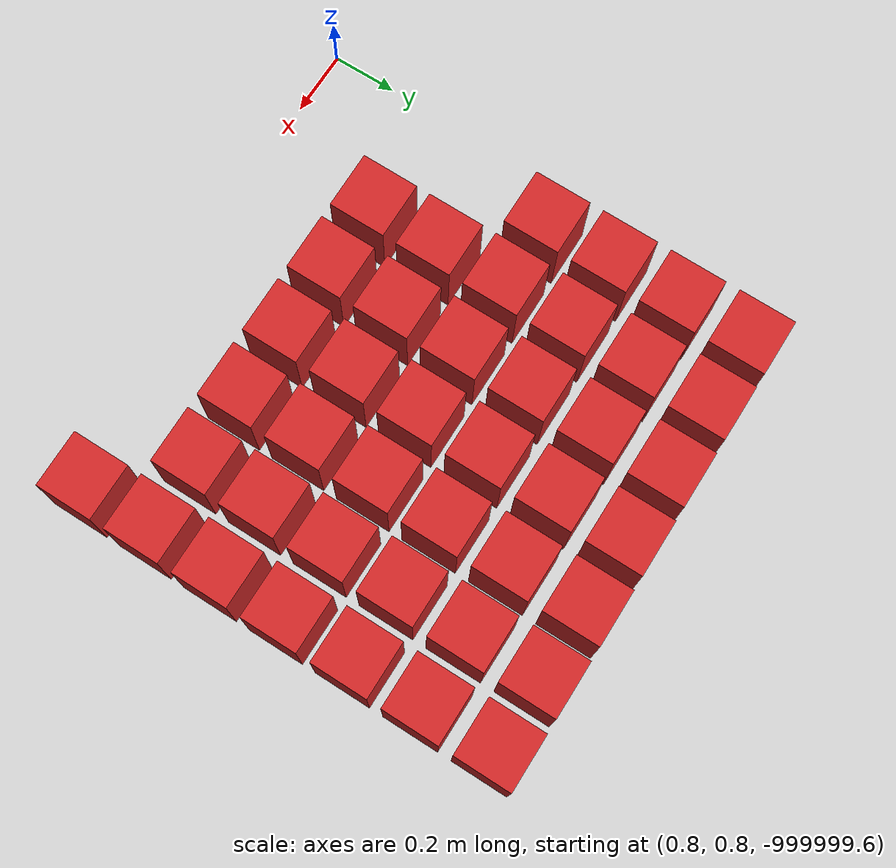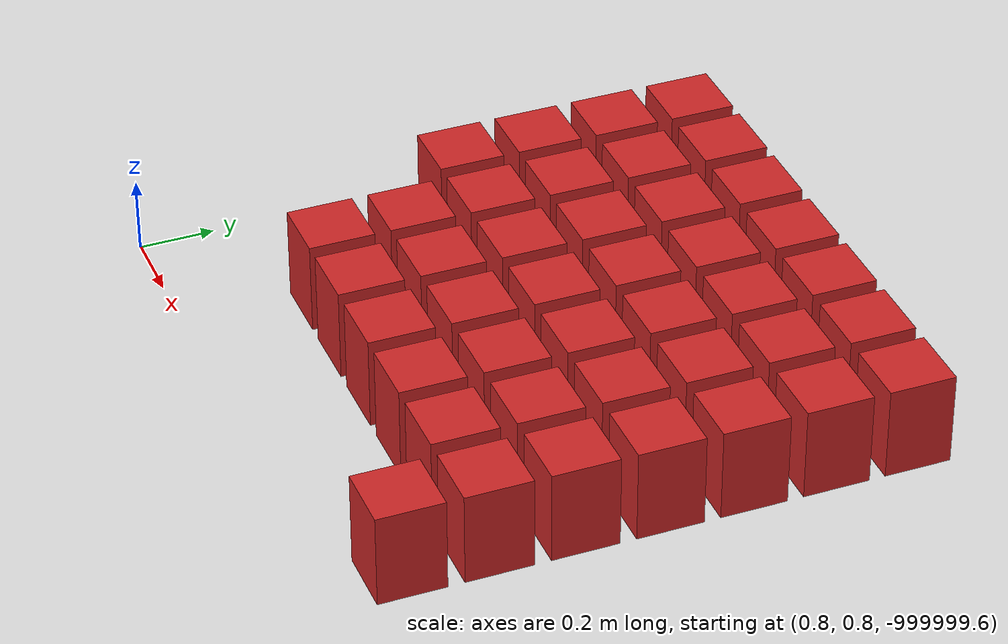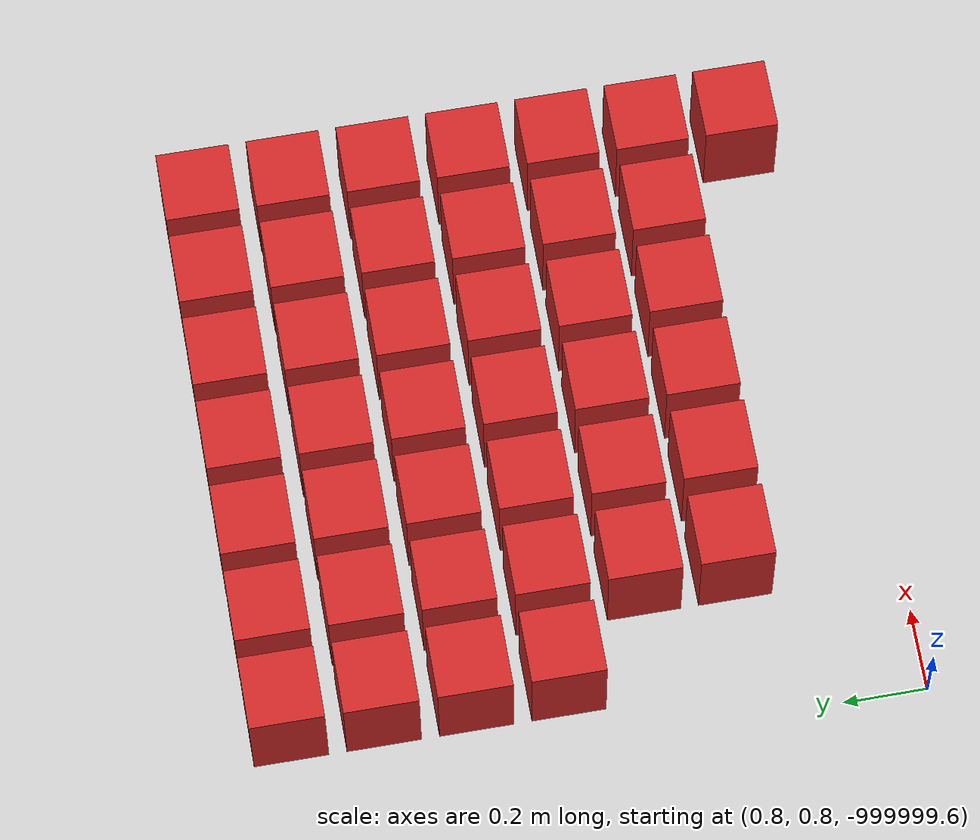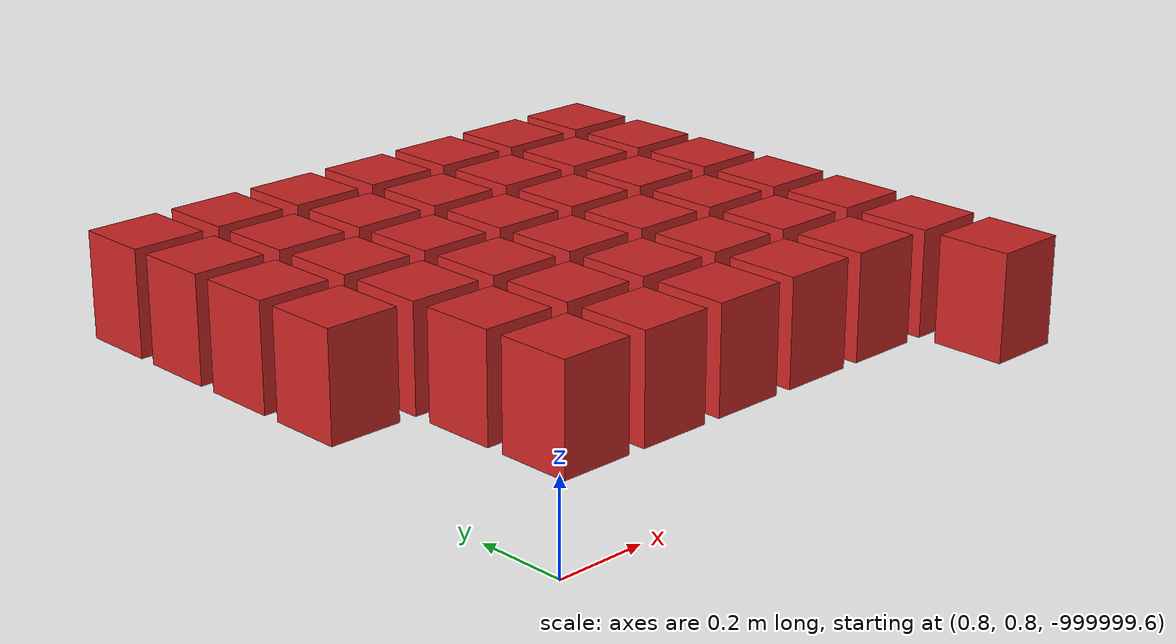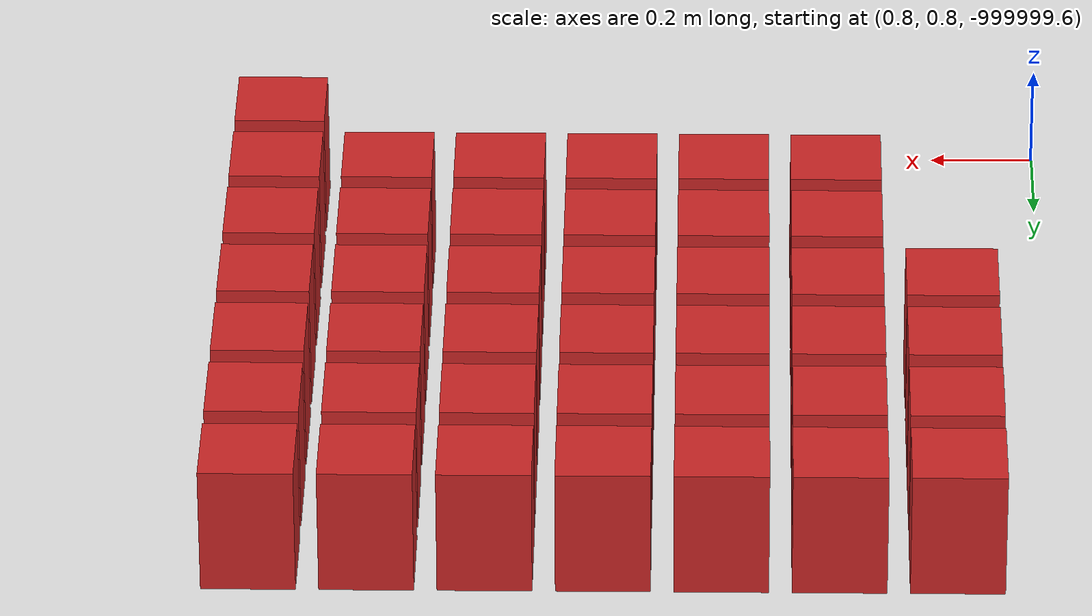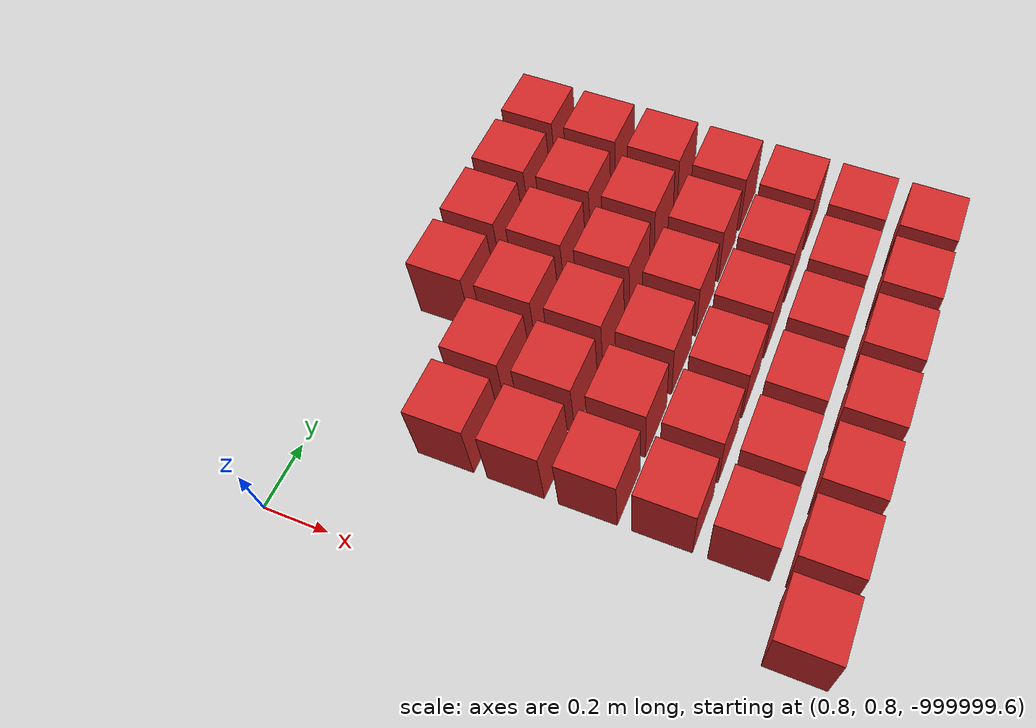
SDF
<sdf version="1.7">
 <world name="default">
  <model name="ground_plane">
   <static>1</static>
   <link name="link">
    <collision name="collision">
     <geometry><plane><normal>0 0 1</normal><size>100 100</size></plane></geometry>
     <surface>
      <contact><collide_bitmask>65535</collide_bitmask></contact>
      <friction><ode><mu>100</mu><mu2>50</mu2></ode></friction>
     </surface>
    </collision>
    <visual name="visual">
     <cast_shadows>0</cast_shadows>
     <geometry><plane><normal>0 0 1</normal><size>100 100</size></plane></geometry>
     <material>
      <script><uri>file://media/materials/scripts/gazebo.material</uri><name>Gazebo/Grey</name></script>
     </material>
    </visual>
   </link>
  </model>
  <model name="wall_390">
   <link name="link">
    <pose>0 0 0.5 0 -0 0</pose>
    <inertial>
     <mass>0.5167</mass>
     <inertia>
      <ixx>0.000861167</ixx>
      <ixy>0</ixy>
      <ixz>0</ixz>
      <iyy>0.000861167</iyy>
      <iyz>0</iyz>
      <izz>0.000861167</izz>
     </inertia>
    </inertial>
    <collision name="collision">
     <geometry><box><size>0.21 0.21 0.25</size></box></geometry>
     <surface>
      <contact>
       <poissons_ratio>0.347</poissons_ratio>
       <elastic_modulus>8.8e+09</elastic_modulus>
       <ode><kp>100000</kp><kd>100</kd><max_vel>100</max_vel><min_depth>0.001</min_depth></ode>
      </contact>
      <friction>
       <torsional>
        <coefficient>1</coefficient>
        <use_patch_radius>0</use_patch_radius>
        <surface_radius>0.01</surface_radius>
       </torsional>
      </friction>
     </surface>
    </collision>
    <visual name="visual">
     <geometry><box><size>0.175 0.175 0.25</size></box></geometry>
     <material>
      <script><uri>file://media/materials/scripts/gazebo.material</uri><name>Gazebo/Red</name></script>
     </material>
    </visual>
   </link>
   <pose>2.28261 0.978261 -1e+06 0 -0 0</pose>
  </model>
  <model name="wall_408">
   <link name="link">
    <pose>0 0 0.5 0 -0 0</pose>
    <inertial>
     <mass>0.5167</mass>
     <inertia>
      <ixx>0.000861167</ixx>
      <ixy>0</ixy>
      <ixz>0</ixz>
      <iyy>0.000861167</iyy>
      <iyz>0</iyz>
      <izz>0.000861167</izz>
     </inertia>
    </inertial>
    <collision name="collision">
     <geometry><box><size>0.21 0.21 0.25</size></box></geometry>
     <surface>
      <contact>
       <poissons_ratio>0.347</poissons_ratio>
       <elastic_modulus>8.8e+09</elastic_modulus>
       <ode><kp>100000</kp><kd>100</kd><max_vel>100</max_vel><min_depth>0.001</min_depth></ode>
      </contact>
      <friction>
       <torsional>
        <coefficient>1</coefficient>
        <use_patch_radius>0</use_patch_radius>
        <surface_radius>0.01</surface_radius>
       </torsional>
      </friction>
     </surface>
    </collision>
    <visual name="visual">
     <geometry><box><size>0.175 0.175 0.25</size></box></geometry>
     <material>
      <script><uri>file://media/materials/scripts/gazebo.material</uri><name>Gazebo/Red</name></script>
     </material>
    </visual>
   </link>
   <pose>1.19565 1.19565 -1e+06 0 -0 0</pose>
  </model>
  <model name="wall_409">
   <link name="link">
    <pose>0 0 0.5 0 -0 0</pose>
    <inertial>
     <mass>0.5167</mass>
     <inertia>
      <ixx>0.000861167</ixx>
      <ixy>0</ixy>
      <ixz>0</ixz>
      <iyy>0.000861167</iyy>
      <iyz>0</iyz>
      <izz>0.000861167</izz>
     </inertia>
    </inertial>
    <collision name="collision">
     <geometry><box><size>0.21 0.21 0.25</size></box></geometry>
     <surface>
      <contact>
       <poissons_ratio>0.347</poissons_ratio>
       <elastic_modulus>8.8e+09</elastic_modulus>
       <ode><kp>100000</kp><kd>100</kd><max_vel>100</max_vel><min_depth>0.001</min_depth></ode>
      </contact>
      <friction>
       <torsional>
        <coefficient>1</coefficient>
        <use_patch_radius>0</use_patch_radius>
        <surface_radius>0.01</surface_radius>
       </torsional>
      </friction>
     </surface>
    </collision>
    <visual name="visual">
     <geometry><box><size>0.175 0.175 0.25</size></box></geometry>
     <material>
      <script><uri>file://media/materials/scripts/gazebo.material</uri><name>Gazebo/Red</name></script>
     </material>
    </visual>
   </link>
   <pose>1.41304 1.19565 -1e+06 0 -0 0</pose>
  </model>
  <model name="wall_410">
   <link name="link">
    <pose>0 0 0.5 0 -0 0</pose>
    <inertial>
     <mass>0.5167</mass>
     <inertia>
      <ixx>0.000861167</ixx>
      <ixy>0</ixy>
      <ixz>0</ixz>
      <iyy>0.000861167</iyy>
      <iyz>0</iyz>
      <izz>0.000861167</izz>
     </inertia>
    </inertial>
    <collision name="collision">
     <geometry><box><size>0.21 0.21 0.25</size></box></geometry>
     <surface>
      <contact>
       <poissons_ratio>0.347</poissons_ratio>
       <elastic_modulus>8.8e+09</elastic_modulus>
       <ode><kp>100000</kp><kd>100</kd><max_vel>100</max_vel><min_depth>0.001</min_depth></ode>
      </contact>
      <friction>
       <torsional>
        <coefficient>1</coefficient>
        <use_patch_radius>0</use_patch_radius>
        <surface_radius>0.01</surface_radius>
       </torsional>
      </friction>
     </surface>
    </collision>
    <visual name="visual">
     <geometry><box><size>0.175 0.175 0.25</size></box></geometry>
     <material>
      <script><uri>file://media/materials/scripts/gazebo.material</uri><name>Gazebo/Red</name></script>
     </material>
    </visual>
   </link>
   <pose>1.63043 1.19565 -1e+06 0 -0 0</pose>
  </model>
  <model name="wall_411">
   <link name="link">
    <pose>0 0 0.5 0 -0 0</pose>
    <inertial>
     <mass>0.5167</mass>
     <inertia>
      <ixx>0.000861167</ixx>
      <ixy>0</ixy>
      <ixz>0</ixz>
      <iyy>0.000861167</iyy>
      <iyz>0</iyz>
      <izz>0.000861167</izz>
     </inertia>
    </inertial>
    <collision name="collision">
     <geometry><box><size>0.21 0.21 0.25</size></box></geometry>
     <surface>
      <contact>
       <poissons_ratio>0.347</poissons_ratio>
       <elastic_modulus>8.8e+09</elastic_modulus>
       <ode><kp>100000</kp><kd>100</kd><max_vel>100</max_vel><min_depth>0.001</min_depth></ode>
      </contact>
      <friction>
       <torsional>
        <coefficient>1</coefficient>
        <use_patch_radius>0</use_patch_radius>
        <surface_radius>0.01</surface_radius>
       </torsional>
      </friction>
     </surface>
    </collision>
    <visual name="visual">
     <geometry><box><size>0.175 0.175 0.25</size></box></geometry>
     <material>
      <script><uri>file://media/materials/scripts/gazebo.material</uri><name>Gazebo/Red</name></script>
     </material>
    </visual>
   </link>
   <pose>1.84783 1.19565 -1e+06 0 -0 0</pose>
  </model>
  <model name="wall_412">
   <link name="link">
    <pose>0 0 0.5 0 -0 0</pose>
    <inertial>
     <mass>0.5167</mass>
     <inertia>
      <ixx>0.000861167</ixx>
      <ixy>0</ixy>
      <ixz>0</ixz>
      <iyy>0.000861167</iyy>
      <iyz>0</iyz>
      <izz>0.000861167</izz>
     </inertia>
    </inertial>
    <collision name="collision">
     <geometry><box><size>0.21 0.21 0.25</size></box></geometry>
     <surface>
      <contact>
       <poissons_ratio>0.347</poissons_ratio>
       <elastic_modulus>8.8e+09</elastic_modulus>
       <ode><kp>100000</kp><kd>100</kd><max_vel>100</max_vel><min_depth>0.001</min_depth></ode>
      </contact>
      <friction>
       <torsional>
        <coefficient>1</coefficient>
        <use_patch_radius>0</use_patch_radius>
        <surface_radius>0.01</surface_radius>
       </torsional>
      </friction>
     </surface>
    </collision>
    <visual name="visual">
     <geometry><box><size>0.175 0.175 0.25</size></box></geometry>
     <material>
      <script><uri>file://media/materials/scripts/gazebo.material</uri><name>Gazebo/Red</name></script>
     </material>
    </visual>
   </link>
   <pose>2.06522 1.19565 -1e+06 0 -0 0</pose>
  </model>
  <model name="wall_413">
   <link name="link">
    <pose>0 0 0.5 0 -0 0</pose>
    <inertial>
     <mass>0.5167</mass>
     <inertia>
      <ixx>0.000861167</ixx>
      <ixy>0</ixy>
      <ixz>0</ixz>
      <iyy>0.000861167</iyy>
      <iyz>0</iyz>
      <izz>0.000861167</izz>
     </inertia>
    </inertial>
    <collision name="collision">
     <geometry><box><size>0.21 0.21 0.25</size></box></geometry>
     <surface>
      <contact>
       <poissons_ratio>0.347</poissons_ratio>
       <elastic_modulus>8.8e+09</elastic_modulus>
       <ode><kp>100000</kp><kd>100</kd><max_vel>100</max_vel><min_depth>0.001</min_depth></ode>
      </contact>
      <friction>
       <torsional>
        <coefficient>1</coefficient>
        <use_patch_radius>0</use_patch_radius>
        <surface_radius>0.01</surface_radius>
       </torsional>
      </friction>
     </surface>
    </collision>
    <visual name="visual">
     <geometry><box><size>0.175 0.175 0.25</size></box></geometry>
     <material>
      <script><uri>file://media/materials/scripts/gazebo.material</uri><name>Gazebo/Red</name></script>
     </material>
    </visual>
   </link>
   <pose>2.28261 1.19565 -1e+06 0 -0 0</pose>
  </model>
  <model name="wall_431">
   <link name="link">
    <pose>0 0 0.5 0 -0 0</pose>
    <inertial>
     <mass>0.5167</mass>
     <inertia>
      <ixx>0.000861167</ixx>
      <ixy>0</ixy>
      <ixz>0</ixz>
      <iyy>0.000861167</iyy>
      <iyz>0</iyz>
      <izz>0.000861167</izz>
     </inertia>
    </inertial>
    <collision name="collision">
     <geometry><box><size>0.21 0.21 0.25</size></box></geometry>
     <surface>
      <contact>
       <poissons_ratio>0.347</poissons_ratio>
       <elastic_modulus>8.8e+09</elastic_modulus>
       <ode><kp>100000</kp><kd>100</kd><max_vel>100</max_vel><min_depth>0.001</min_depth></ode>
      </contact>
      <friction>
       <torsional>
        <coefficient>1</coefficient>
        <use_patch_radius>0</use_patch_radius>
        <surface_radius>0.01</surface_radius>
       </torsional>
      </friction>
     </surface>
    </collision>
    <visual name="visual">
     <geometry><box><size>0.175 0.175 0.25</size></box></geometry>
     <material>
      <script><uri>file://media/materials/scripts/gazebo.material</uri><name>Gazebo/Red</name></script>
     </material>
    </visual>
   </link>
   <pose>1.19565 1.41304 -1e+06 0 -0 0</pose>
  </model>
  <model name="wall_432">
   <link name="link">
    <pose>0 0 0.5 0 -0 0</pose>
    <inertial>
     <mass>0.5167</mass>
     <inertia>
      <ixx>0.000861167</ixx>
      <ixy>0</ixy>
      <ixz>0</ixz>
      <iyy>0.000861167</iyy>
      <iyz>0</iyz>
      <izz>0.000861167</izz>
     </inertia>
    </inertial>
    <collision name="collision">
     <geometry><box><size>0.21 0.21 0.25</size></box></geometry>
     <surface>
      <contact>
       <poissons_ratio>0.347</poissons_ratio>
       <elastic_modulus>8.8e+09</elastic_modulus>
       <ode><kp>100000</kp><kd>100</kd><max_vel>100</max_vel><min_depth>0.001</min_depth></ode>
      </contact>
      <friction>
       <torsional>
        <coefficient>1</coefficient>
        <use_patch_radius>0</use_patch_radius>
        <surface_radius>0.01</surface_radius>
       </torsional>
      </friction>
     </surface>
    </collision>
    <visual name="visual">
     <geometry><box><size>0.175 0.175 0.25</size></box></geometry>
     <material>
      <script><uri>file://media/materials/scripts/gazebo.material</uri><name>Gazebo/Red</name></script>
     </material>
    </visual>
   </link>
   <pose>1.41304 1.41304 -1e+06 0 -0 0</pose>
  </model>
  <model name="wall_433">
   <link name="link">
    <pose>0 0 0.5 0 -0 0</pose>
    <inertial>
     <mass>0.5167</mass>
     <inertia>
      <ixx>0.000861167</ixx>
      <ixy>0</ixy>
      <ixz>0</ixz>
      <iyy>0.000861167</iyy>
      <iyz>0</iyz>
      <izz>0.000861167</izz>
     </inertia>
    </inertial>
    <collision name="collision">
     <geometry><box><size>0.21 0.21 0.25</size></box></geometry>
     <surface>
      <contact>
       <poissons_ratio>0.347</poissons_ratio>
       <elastic_modulus>8.8e+09</elastic_modulus>
       <ode><kp>100000</kp><kd>100</kd><max_vel>100</max_vel><min_depth>0.001</min_depth></ode>
      </contact>
      <friction>
       <torsional>
        <coefficient>1</coefficient>
        <use_patch_radius>0</use_patch_radius>
        <surface_radius>0.01</surface_radius>
       </torsional>
      </friction>
     </surface>
    </collision>
    <visual name="visual">
     <geometry><box><size>0.175 0.175 0.25</size></box></geometry>
     <material>
      <script><uri>file://media/materials/scripts/gazebo.material</uri><name>Gazebo/Red</name></script>
     </material>
    </visual>
   </link>
   <pose>1.63043 1.41304 -1e+06 0 -0 0</pose>
  </model>
  <model name="wall_434">
   <link name="link">
    <pose>0 0 0.5 0 -0 0</pose>
    <inertial>
     <mass>0.5167</mass>
     <inertia>
      <ixx>0.000861167</ixx>
      <ixy>0</ixy>
      <ixz>0</ixz>
      <iyy>0.000861167</iyy>
      <iyz>0</iyz>
      <izz>0.000861167</izz>
     </inertia>
    </inertial>
    <collision name="collision">
     <geometry><box><size>0.21 0.21 0.25</size></box></geometry>
     <surface>
      <contact>
       <poissons_ratio>0.347</poissons_ratio>
       <elastic_modulus>8.8e+09</elastic_modulus>
       <ode><kp>100000</kp><kd>100</kd><max_vel>100</max_vel><min_depth>0.001</min_depth></ode>
      </contact>
      <friction>
       <torsional>
        <coefficient>1</coefficient>
        <use_patch_radius>0</use_patch_radius>
        <surface_radius>0.01</surface_radius>
       </torsional>
      </friction>
     </surface>
    </collision>
    <visual name="visual">
     <geometry><box><size>0.175 0.175 0.25</size></box></geometry>
     <material>
      <script><uri>file://media/materials/scripts/gazebo.material</uri><name>Gazebo/Red</name></script>
     </material>
    </visual>
   </link>
   <pose>1.84783 1.41304 -1e+06 0 -0 0</pose>
  </model>
  <model name="wall_435">
   <link name="link">
    <pose>0 0 0.5 0 -0 0</pose>
    <inertial>
     <mass>0.5167</mass>
     <inertia>
      <ixx>0.000861167</ixx>
      <ixy>0</ixy>
      <ixz>0</ixz>
      <iyy>0.000861167</iyy>
      <iyz>0</iyz>
      <izz>0.000861167</izz>
     </inertia>
    </inertial>
    <collision name="collision">
     <geometry><box><size>0.21 0.21 0.25</size></box></geometry>
     <surface>
      <contact>
       <poissons_ratio>0.347</poissons_ratio>
       <elastic_modulus>8.8e+09</elastic_modulus>
       <ode><kp>100000</kp><kd>100</kd><max_vel>100</max_vel><min_depth>0.001</min_depth></ode>
      </contact>
      <friction>
       <torsional>
        <coefficient>1</coefficient>
        <use_patch_radius>0</use_patch_radius>
        <surface_radius>0.01</surface_radius>
       </torsional>
      </friction>
     </surface>
    </collision>
    <visual name="visual">
     <geometry><box><size>0.175 0.175 0.25</size></box></geometry>
     <material>
      <script><uri>file://media/materials/scripts/gazebo.material</uri><name>Gazebo/Red</name></script>
     </material>
    </visual>
   </link>
   <pose>2.06522 1.41304 -1e+06 0 -0 0</pose>
  </model>
  <model name="wall_436">
   <link name="link">
    <pose>0 0 0.5 0 -0 0</pose>
    <inertial>
     <mass>0.5167</mass>
     <inertia>
      <ixx>0.000861167</ixx>
      <ixy>0</ixy>
      <ixz>0</ixz>
      <iyy>0.000861167</iyy>
      <iyz>0</iyz>
      <izz>0.000861167</izz>
     </inertia>
    </inertial>
    <collision name="collision">
     <geometry><box><size>0.21 0.21 0.25</size></box></geometry>
     <surface>
      <contact>
       <poissons_ratio>0.347</poissons_ratio>
       <elastic_modulus>8.8e+09</elastic_modulus>
       <ode><kp>100000</kp><kd>100</kd><max_vel>100</max_vel><min_depth>0.001</min_depth></ode>
      </contact>
      <friction>
       <torsional>
        <coefficient>1</coefficient>
        <use_patch_radius>0</use_patch_radius>
        <surface_radius>0.01</surface_radius>
       </torsional>
      </friction>
     </surface>
    </collision>
    <visual name="visual">
     <geometry><box><size>0.175 0.175 0.25</size></box></geometry>
     <material>
      <script><uri>file://media/materials/scripts/gazebo.material</uri><name>Gazebo/Red</name></script>
     </material>
    </visual>
   </link>
   <pose>2.28261 1.41304 -1e+06 0 -0 0</pose>
  </model>
  <model name="wall_453">
   <link name="link">
    <pose>0 0 0.5 0 -0 0</pose>
    <inertial>
     <mass>0.5167</mass>
     <inertia>
      <ixx>0.000861167</ixx>
      <ixy>0</ixy>
      <ixz>0</ixz>
      <iyy>0.000861167</iyy>
      <iyz>0</iyz>
      <izz>0.000861167</izz>
     </inertia>
    </inertial>
    <collision name="collision">
     <geometry><box><size>0.21 0.21 0.25</size></box></geometry>
     <surface>
      <contact>
       <poissons_ratio>0.347</poissons_ratio>
       <elastic_modulus>8.8e+09</elastic_modulus>
       <ode><kp>100000</kp><kd>100</kd><max_vel>100</max_vel><min_depth>0.001</min_depth></ode>
      </contact>
      <friction>
       <torsional>
        <coefficient>1</coefficient>
        <use_patch_radius>0</use_patch_radius>
        <surface_radius>0.01</surface_radius>
       </torsional>
      </friction>
     </surface>
    </collision>
    <visual name="visual">
     <geometry><box><size>0.175 0.175 0.25</size></box></geometry>
     <material>
      <script><uri>file://media/materials/scripts/gazebo.material</uri><name>Gazebo/Red</name></script>
     </material>
    </visual>
   </link>
   <pose>0.978261 1.63043 -1e+06 0 -0 0</pose>
  </model>
  <model name="wall_454">
   <link name="link">
    <pose>0 0 0.5 0 -0 0</pose>
    <inertial>
     <mass>0.5167</mass>
     <inertia>
      <ixx>0.000861167</ixx>
      <ixy>0</ixy>
      <ixz>0</ixz>
      <iyy>0.000861167</iyy>
      <iyz>0</iyz>
      <izz>0.000861167</izz>
     </inertia>
    </inertial>
    <collision name="collision">
     <geometry><box><size>0.21 0.21 0.25</size></box></geometry>
     <surface>
      <contact>
       <poissons_ratio>0.347</poissons_ratio>
       <elastic_modulus>8.8e+09</elastic_modulus>
       <ode><kp>100000</kp><kd>100</kd><max_vel>100</max_vel><min_depth>0.001</min_depth></ode>
      </contact>
      <friction>
       <torsional>
        <coefficient>1</coefficient>
        <use_patch_radius>0</use_patch_radius>
        <surface_radius>0.01</surface_radius>
       </torsional>
      </friction>
     </surface>
    </collision>
    <visual name="visual">
     <geometry><box><size>0.175 0.175 0.25</size></box></geometry>
     <material>
      <script><uri>file://media/materials/scripts/gazebo.material</uri><name>Gazebo/Red</name></script>
     </material>
    </visual>
   </link>
   <pose>1.19565 1.63043 -1e+06 0 -0 0</pose>
  </model>
  <model name="wall_455">
   <link name="link">
    <pose>0 0 0.5 0 -0 0</pose>
    <inertial>
     <mass>0.5167</mass>
     <inertia>
      <ixx>0.000861167</ixx>
      <ixy>0</ixy>
      <ixz>0</ixz>
      <iyy>0.000861167</iyy>
      <iyz>0</iyz>
      <izz>0.000861167</izz>
     </inertia>
    </inertial>
    <collision name="collision">
     <geometry><box><size>0.21 0.21 0.25</size></box></geometry>
     <surface>
      <contact>
       <poissons_ratio>0.347</poissons_ratio>
       <elastic_modulus>8.8e+09</elastic_modulus>
       <ode><kp>100000</kp><kd>100</kd><max_vel>100</max_vel><min_depth>0.001</min_depth></ode>
      </contact>
      <friction>
       <torsional>
        <coefficient>1</coefficient>
        <use_patch_radius>0</use_patch_radius>
        <surface_radius>0.01</surface_radius>
       </torsional>
      </friction>
     </surface>
    </collision>
    <visual name="visual">
     <geometry><box><size>0.175 0.175 0.25</size></box></geometry>
     <material>
      <script><uri>file://media/materials/scripts/gazebo.material</uri><name>Gazebo/Red</name></script>
     </material>
    </visual>
   </link>
   <pose>1.41304 1.63043 -1e+06 0 -0 0</pose>
  </model>
  <model name="wall_456">
   <link name="link">
    <pose>0 0 0.5 0 -0 0</pose>
    <inertial>
     <mass>0.5167</mass>
     <inertia>
      <ixx>0.000861167</ixx>
      <ixy>0</ixy>
      <ixz>0</ixz>
      <iyy>0.000861167</iyy>
      <iyz>0</iyz>
      <izz>0.000861167</izz>
     </inertia>
    </inertial>
    <collision name="collision">
     <geometry><box><size>0.21 0.21 0.25</size></box></geometry>
     <surface>
      <contact>
       <poissons_ratio>0.347</poissons_ratio>
       <elastic_modulus>8.8e+09</elastic_modulus>
       <ode><kp>100000</kp><kd>100</kd><max_vel>100</max_vel><min_depth>0.001</min_depth></ode>
      </contact>
      <friction>
       <torsional>
        <coefficient>1</coefficient>
        <use_patch_radius>0</use_patch_radius>
        <surface_radius>0.01</surface_radius>
       </torsional>
      </friction>
     </surface>
    </collision>
    <visual name="visual">
     <geometry><box><size>0.175 0.175 0.25</size></box></geometry>
     <material>
      <script><uri>file://media/materials/scripts/gazebo.material</uri><name>Gazebo/Red</name></script>
     </material>
    </visual>
   </link>
   <pose>1.63043 1.63043 -1e+06 0 -0 0</pose>
  </model>
  <model name="wall_457">
   <link name="link">
    <pose>0 0 0.5 0 -0 0</pose>
    <inertial>
     <mass>0.5167</mass>
     <inertia>
      <ixx>0.000861167</ixx>
      <ixy>0</ixy>
      <ixz>0</ixz>
      <iyy>0.000861167</iyy>
      <iyz>0</iyz>
      <izz>0.000861167</izz>
     </inertia>
    </inertial>
    <collision name="collision">
     <geometry><box><size>0.21 0.21 0.25</size></box></geometry>
     <surface>
      <contact>
       <poissons_ratio>0.347</poissons_ratio>
       <elastic_modulus>8.8e+09</elastic_modulus>
       <ode><kp>100000</kp><kd>100</kd><max_vel>100</max_vel><min_depth>0.001</min_depth></ode>
      </contact>
      <friction>
       <torsional>
        <coefficient>1</coefficient>
        <use_patch_radius>0</use_patch_radius>
        <surface_radius>0.01</surface_radius>
       </torsional>
      </friction>
     </surface>
    </collision>
    <visual name="visual">
     <geometry><box><size>0.175 0.175 0.25</size></box></geometry>
     <material>
      <script><uri>file://media/materials/scripts/gazebo.material</uri><name>Gazebo/Red</name></script>
     </material>
    </visual>
   </link>
   <pose>1.84783 1.63043 -1e+06 0 -0 0</pose>
  </model>
  <model name="wall_458">
   <link name="link">
    <pose>0 0 0.5 0 -0 0</pose>
    <inertial>
     <mass>0.5167</mass>
     <inertia>
      <ixx>0.000861167</ixx>
      <ixy>0</ixy>
      <ixz>0</ixz>
      <iyy>0.000861167</iyy>
      <iyz>0</iyz>
      <izz>0.000861167</izz>
     </inertia>
    </inertial>
    <collision name="collision">
     <geometry><box><size>0.21 0.21 0.25</size></box></geometry>
     <surface>
      <contact>
       <poissons_ratio>0.347</poissons_ratio>
       <elastic_modulus>8.8e+09</elastic_modulus>
       <ode><kp>100000</kp><kd>100</kd><max_vel>100</max_vel><min_depth>0.001</min_depth></ode>
      </contact>
      <friction>
       <torsional>
        <coefficient>1</coefficient>
        <use_patch_radius>0</use_patch_radius>
        <surface_radius>0.01</surface_radius>
       </torsional>
      </friction>
     </surface>
    </collision>
    <visual name="visual">
     <geometry><box><size>0.175 0.175 0.25</size></box></geometry>
     <material>
      <script><uri>file://media/materials/scripts/gazebo.material</uri><name>Gazebo/Red</name></script>
     </material>
    </visual>
   </link>
   <pose>2.06522 1.63043 -1e+06 0 -0 0</pose>
  </model>
  <model name="wall_459">
   <link name="link">
    <pose>0 0 0.5 0 -0 0</pose>
    <inertial>
     <mass>0.5167</mass>
     <inertia>
      <ixx>0.000861167</ixx>
      <ixy>0</ixy>
      <ixz>0</ixz>
      <iyy>0.000861167</iyy>
      <iyz>0</iyz>
      <izz>0.000861167</izz>
     </inertia>
    </inertial>
    <collision name="collision">
     <geometry><box><size>0.21 0.21 0.25</size></box></geometry>
     <surface>
      <contact>
       <poissons_ratio>0.347</poissons_ratio>
       <elastic_modulus>8.8e+09</elastic_modulus>
       <ode><kp>100000</kp><kd>100</kd><max_vel>100</max_vel><min_depth>0.001</min_depth></ode>
      </contact>
      <friction>
       <torsional>
        <coefficient>1</coefficient>
        <use_patch_radius>0</use_patch_radius>
        <surface_radius>0.01</surface_radius>
       </torsional>
      </friction>
     </surface>
    </collision>
    <visual name="visual">
     <geometry><box><size>0.175 0.175 0.25</size></box></geometry>
     <material>
      <script><uri>file://media/materials/scripts/gazebo.material</uri><name>Gazebo/Red</name></script>
     </material>
    </visual>
   </link>
   <pose>2.28261 1.63043 -1e+06 0 -0 0</pose>
  </model>
  <model name="wall_476">
   <link name="link">
    <pose>0 0 0.5 0 -0 0</pose>
    <inertial>
     <mass>0.5167</mass>
     <inertia>
      <ixx>0.000861167</ixx>
      <ixy>0</ixy>
      <ixz>0</ixz>
      <iyy>0.000861167</iyy>
      <iyz>0</iyz>
      <izz>0.000861167</izz>
     </inertia>
    </inertial>
    <collision name="collision">
     <geometry><box><size>0.21 0.21 0.25</size></box></geometry>
     <surface>
      <contact>
       <poissons_ratio>0.347</poissons_ratio>
       <elastic_modulus>8.8e+09</elastic_modulus>
       <ode><kp>100000</kp><kd>100</kd><max_vel>100</max_vel><min_depth>0.001</min_depth></ode>
      </contact>
      <friction>
       <torsional>
        <coefficient>1</coefficient>
        <use_patch_radius>0</use_patch_radius>
        <surface_radius>0.01</surface_radius>
       </torsional>
      </friction>
     </surface>
    </collision>
    <visual name="visual">
     <geometry><box><size>0.175 0.175 0.25</size></box></geometry>
     <material>
      <script><uri>file://media/materials/scripts/gazebo.material</uri><name>Gazebo/Red</name></script>
     </material>
    </visual>
   </link>
   <pose>0.978261 1.84783 -1e+06 0 -0 0</pose>
  </model>
  <model name="wall_477">
   <link name="link">
    <pose>0 0 0.5 0 -0 0</pose>
    <inertial>
     <mass>0.5167</mass>
     <inertia>
      <ixx>0.000861167</ixx>
      <ixy>0</ixy>
      <ixz>0</ixz>
      <iyy>0.000861167</iyy>
      <iyz>0</iyz>
      <izz>0.000861167</izz>
     </inertia>
    </inertial>
    <collision name="collision">
     <geometry><box><size>0.21 0.21 0.25</size></box></geometry>
     <surface>
      <contact>
       <poissons_ratio>0.347</poissons_ratio>
       <elastic_modulus>8.8e+09</elastic_modulus>
       <ode><kp>100000</kp><kd>100</kd><max_vel>100</max_vel><min_depth>0.001</min_depth></ode>
      </contact>
      <friction>
       <torsional>
        <coefficient>1</coefficient>
        <use_patch_radius>0</use_patch_radius>
        <surface_radius>0.01</surface_radius>
       </torsional>
      </friction>
     </surface>
    </collision>
    <visual name="visual">
     <geometry><box><size>0.175 0.175 0.25</size></box></geometry>
     <material>
      <script><uri>file://media/materials/scripts/gazebo.material</uri><name>Gazebo/Red</name></script>
     </material>
    </visual>
   </link>
   <pose>1.19565 1.84783 -1e+06 0 -0 0</pose>
  </model>
  <model name="wall_478">
   <link name="link">
    <pose>0 0 0.5 0 -0 0</pose>
    <inertial>
     <mass>0.5167</mass>
     <inertia>
      <ixx>0.000861167</ixx>
      <ixy>0</ixy>
      <ixz>0</ixz>
      <iyy>0.000861167</iyy>
      <iyz>0</iyz>
      <izz>0.000861167</izz>
     </inertia>
    </inertial>
    <collision name="collision">
     <geometry><box><size>0.21 0.21 0.25</size></box></geometry>
     <surface>
      <contact>
       <poissons_ratio>0.347</poissons_ratio>
       <elastic_modulus>8.8e+09</elastic_modulus>
       <ode><kp>100000</kp><kd>100</kd><max_vel>100</max_vel><min_depth>0.001</min_depth></ode>
      </contact>
      <friction>
       <torsional>
        <coefficient>1</coefficient>
        <use_patch_radius>0</use_patch_radius>
        <surface_radius>0.01</surface_radius>
       </torsional>
      </friction>
     </surface>
    </collision>
    <visual name="visual">
     <geometry><box><size>0.175 0.175 0.25</size></box></geometry>
     <material>
      <script><uri>file://media/materials/scripts/gazebo.material</uri><name>Gazebo/Red</name></script>
     </material>
    </visual>
   </link>
   <pose>1.41304 1.84783 -1e+06 0 -0 0</pose>
  </model>
  <model name="wall_479">
   <link name="link">
    <pose>0 0 0.5 0 -0 0</pose>
    <inertial>
     <mass>0.5167</mass>
     <inertia>
      <ixx>0.000861167</ixx>
      <ixy>0</ixy>
      <ixz>0</ixz>
      <iyy>0.000861167</iyy>
      <iyz>0</iyz>
      <izz>0.000861167</izz>
     </inertia>
    </inertial>
    <collision name="collision">
     <geometry><box><size>0.21 0.21 0.25</size></box></geometry>
     <surface>
      <contact>
       <poissons_ratio>0.347</poissons_ratio>
       <elastic_modulus>8.8e+09</elastic_modulus>
       <ode><kp>100000</kp><kd>100</kd><max_vel>100</max_vel><min_depth>0.001</min_depth></ode>
      </contact>
      <friction>
       <torsional>
        <coefficient>1</coefficient>
        <use_patch_radius>0</use_patch_radius>
        <surface_radius>0.01</surface_radius>
       </torsional>
      </friction>
     </surface>
    </collision>
    <visual name="visual">
     <geometry><box><size>0.175 0.175 0.25</size></box></geometry>
     <material>
      <script><uri>file://media/materials/scripts/gazebo.material</uri><name>Gazebo/Red</name></script>
     </material>
    </visual>
   </link>
   <pose>1.63043 1.84783 -1e+06 0 -0 0</pose>
  </model>
  <model name="wall_480">
   <link name="link">
    <pose>0 0 0.5 0 -0 0</pose>
    <inertial>
     <mass>0.5167</mass>
     <inertia>
      <ixx>0.000861167</ixx>
      <ixy>0</ixy>
      <ixz>0</ixz>
      <iyy>0.000861167</iyy>
      <iyz>0</iyz>
      <izz>0.000861167</izz>
     </inertia>
    </inertial>
    <collision name="collision">
     <geometry><box><size>0.21 0.21 0.25</size></box></geometry>
     <surface>
      <contact>
       <poissons_ratio>0.347</poissons_ratio>
       <elastic_modulus>8.8e+09</elastic_modulus>
       <ode><kp>100000</kp><kd>100</kd><max_vel>100</max_vel><min_depth>0.001</min_depth></ode>
      </contact>
      <friction>
       <torsional>
        <coefficient>1</coefficient>
        <use_patch_radius>0</use_patch_radius>
        <surface_radius>0.01</surface_radius>
       </torsional>
      </friction>
     </surface>
    </collision>
    <visual name="visual">
     <geometry><box><size>0.175 0.175 0.25</size></box></geometry>
     <material>
      <script><uri>file://media/materials/scripts/gazebo.material</uri><name>Gazebo/Red</name></script>
     </material>
    </visual>
   </link>
   <pose>1.84783 1.84783 -1e+06 0 -0 0</pose>
  </model>
  <model name="wall_481">
   <link name="link">
    <pose>0 0 0.5 0 -0 0</pose>
    <inertial>
     <mass>0.5167</mass>
     <inertia>
      <ixx>0.000861167</ixx>
      <ixy>0</ixy>
      <ixz>0</ixz>
      <iyy>0.000861167</iyy>
      <iyz>0</iyz>
      <izz>0.000861167</izz>
     </inertia>
    </inertial>
    <collision name="collision">
     <geometry><box><size>0.21 0.21 0.25</size></box></geometry>
     <surface>
      <contact>
       <poissons_ratio>0.347</poissons_ratio>
       <elastic_modulus>8.8e+09</elastic_modulus>
       <ode><kp>100000</kp><kd>100</kd><max_vel>100</max_vel><min_depth>0.001</min_depth></ode>
      </contact>
      <friction>
       <torsional>
        <coefficient>1</coefficient>
        <use_patch_radius>0</use_patch_radius>
        <surface_radius>0.01</surface_radius>
       </torsional>
      </friction>
     </surface>
    </collision>
    <visual name="visual">
     <geometry><box><size>0.175 0.175 0.25</size></box></geometry>
     <material>
      <script><uri>file://media/materials/scripts/gazebo.material</uri><name>Gazebo/Red</name></script>
     </material>
    </visual>
   </link>
   <pose>2.06522 1.84783 -1e+06 0 -0 0</pose>
  </model>
  <model name="wall_482">
   <link name="link">
    <pose>0 0 0.5 0 -0 0</pose>
    <inertial>
     <mass>0.5167</mass>
     <inertia>
      <ixx>0.000861167</ixx>
      <ixy>0</ixy>
      <ixz>0</ixz>
      <iyy>0.000861167</iyy>
      <iyz>0</iyz>
      <izz>0.000861167</izz>
     </inertia>
    </inertial>
    <collision name="collision">
     <geometry><box><size>0.21 0.21 0.25</size></box></geometry>
     <surface>
      <contact>
       <poissons_ratio>0.347</poissons_ratio>
       <elastic_modulus>8.8e+09</elastic_modulus>
       <ode><kp>100000</kp><kd>100</kd><max_vel>100</max_vel><min_depth>0.001</min_depth></ode>
      </contact>
      <friction>
       <torsional>
        <coefficient>1</coefficient>
        <use_patch_radius>0</use_patch_radius>
        <surface_radius>0.01</surface_radius>
       </torsional>
      </friction>
     </surface>
    </collision>
    <visual name="visual">
     <geometry><box><size>0.175 0.175 0.25</size></box></geometry>
     <material>
      <script><uri>file://media/materials/scripts/gazebo.material</uri><name>Gazebo/Red</name></script>
     </material>
    </visual>
   </link>
   <pose>2.28261 1.84783 -1e+06 0 -0 0</pose>
  </model>
  <model name="wall_499">
   <link name="link">
    <pose>0 0 0.5 0 -0 0</pose>
    <inertial>
     <mass>0.5167</mass>
     <inertia>
      <ixx>0.000861167</ixx>
      <ixy>0</ixy>
      <ixz>0</ixz>
      <iyy>0.000861167</iyy>
      <iyz>0</iyz>
      <izz>0.000861167</izz>
     </inertia>
    </inertial>
    <collision name="collision">
     <geometry><box><size>0.21 0.21 0.25</size></box></geometry>
     <surface>
      <contact>
       <poissons_ratio>0.347</poissons_ratio>
       <elastic_modulus>8.8e+09</elastic_modulus>
       <ode><kp>100000</kp><kd>100</kd><max_vel>100</max_vel><min_depth>0.001</min_depth></ode>
      </contact>
      <friction>
       <torsional>
        <coefficient>1</coefficient>
        <use_patch_radius>0</use_patch_radius>
        <surface_radius>0.01</surface_radius>
       </torsional>
      </friction>
     </surface>
    </collision>
    <visual name="visual">
     <geometry><box><size>0.175 0.175 0.25</size></box></geometry>
     <material>
      <script><uri>file://media/materials/scripts/gazebo.material</uri><name>Gazebo/Red</name></script>
     </material>
    </visual>
   </link>
   <pose>0.978261 2.06522 -1e+06 0 -0 0</pose>
  </model>
  <model name="wall_500">
   <link name="link">
    <pose>0 0 0.5 0 -0 0</pose>
    <inertial>
     <mass>0.5167</mass>
     <inertia>
      <ixx>0.000861167</ixx>
      <ixy>0</ixy>
      <ixz>0</ixz>
      <iyy>0.000861167</iyy>
      <iyz>0</iyz>
      <izz>0.000861167</izz>
     </inertia>
    </inertial>
    <collision name="collision">
     <geometry><box><size>0.21 0.21 0.25</size></box></geometry>
     <surface>
      <contact>
       <poissons_ratio>0.347</poissons_ratio>
       <elastic_modulus>8.8e+09</elastic_modulus>
       <ode><kp>100000</kp><kd>100</kd><max_vel>100</max_vel><min_depth>0.001</min_depth></ode>
      </contact>
      <friction>
       <torsional>
        <coefficient>1</coefficient>
        <use_patch_radius>0</use_patch_radius>
        <surface_radius>0.01</surface_radius>
       </torsional>
      </friction>
     </surface>
    </collision>
    <visual name="visual">
     <geometry><box><size>0.175 0.175 0.25</size></box></geometry>
     <material>
      <script><uri>file://media/materials/scripts/gazebo.material</uri><name>Gazebo/Red</name></script>
     </material>
    </visual>
   </link>
   <pose>1.19565 2.06522 -1e+06 0 -0 0</pose>
  </model>
  <model name="wall_501">
   <link name="link">
    <pose>0 0 0.5 0 -0 0</pose>
    <inertial>
     <mass>0.5167</mass>
     <inertia>
      <ixx>0.000861167</ixx>
      <ixy>0</ixy>
      <ixz>0</ixz>
      <iyy>0.000861167</iyy>
      <iyz>0</iyz>
      <izz>0.000861167</izz>
     </inertia>
    </inertial>
    <collision name="collision">
     <geometry><box><size>0.21 0.21 0.25</size></box></geometry>
     <surface>
      <contact>
       <poissons_ratio>0.347</poissons_ratio>
       <elastic_modulus>8.8e+09</elastic_modulus>
       <ode><kp>100000</kp><kd>100</kd><max_vel>100</max_vel><min_depth>0.001</min_depth></ode>
      </contact>
      <friction>
       <torsional>
        <coefficient>1</coefficient>
        <use_patch_radius>0</use_patch_radius>
        <surface_radius>0.01</surface_radius>
       </torsional>
      </friction>
     </surface>
    </collision>
    <visual name="visual">
     <geometry><box><size>0.175 0.175 0.25</size></box></geometry>
     <material>
      <script><uri>file://media/materials/scripts/gazebo.material</uri><name>Gazebo/Red</name></script>
     </material>
    </visual>
   </link>
   <pose>1.41304 2.06522 -1e+06 0 -0 0</pose>
  </model>
  <model name="wall_502">
   <link name="link">
    <pose>0 0 0.5 0 -0 0</pose>
    <inertial>
     <mass>0.5167</mass>
     <inertia>
      <ixx>0.000861167</ixx>
      <ixy>0</ixy>
      <ixz>0</ixz>
      <iyy>0.000861167</iyy>
      <iyz>0</iyz>
      <izz>0.000861167</izz>
     </inertia>
    </inertial>
    <collision name="collision">
     <geometry><box><size>0.21 0.21 0.25</size></box></geometry>
     <surface>
      <contact>
       <poissons_ratio>0.347</poissons_ratio>
       <elastic_modulus>8.8e+09</elastic_modulus>
       <ode><kp>100000</kp><kd>100</kd><max_vel>100</max_vel><min_depth>0.001</min_depth></ode>
      </contact>
      <friction>
       <torsional>
        <coefficient>1</coefficient>
        <use_patch_radius>0</use_patch_radius>
        <surface_radius>0.01</surface_radius>
       </torsional>
      </friction>
     </surface>
    </collision>
    <visual name="visual">
     <geometry><box><size>0.175 0.175 0.25</size></box></geometry>
     <material>
      <script><uri>file://media/materials/scripts/gazebo.material</uri><name>Gazebo/Red</name></script>
     </material>
    </visual>
   </link>
   <pose>1.63043 2.06522 -1e+06 0 -0 0</pose>
  </model>
  <model name="wall_503">
   <link name="link">
    <pose>0 0 0.5 0 -0 0</pose>
    <inertial>
     <mass>0.5167</mass>
     <inertia>
      <ixx>0.000861167</ixx>
      <ixy>0</ixy>
      <ixz>0</ixz>
      <iyy>0.000861167</iyy>
      <iyz>0</iyz>
      <izz>0.000861167</izz>
     </inertia>
    </inertial>
    <collision name="collision">
     <geometry><box><size>0.21 0.21 0.25</size></box></geometry>
     <surface>
      <contact>
       <poissons_ratio>0.347</poissons_ratio>
       <elastic_modulus>8.8e+09</elastic_modulus>
       <ode><kp>100000</kp><kd>100</kd><max_vel>100</max_vel><min_depth>0.001</min_depth></ode>
      </contact>
      <friction>
       <torsional>
        <coefficient>1</coefficient>
        <use_patch_radius>0</use_patch_radius>
        <surface_radius>0.01</surface_radius>
       </torsional>
      </friction>
     </surface>
    </collision>
    <visual name="visual">
     <geometry><box><size>0.175 0.175 0.25</size></box></geometry>
     <material>
      <script><uri>file://media/materials/scripts/gazebo.material</uri><name>Gazebo/Red</name></script>
     </material>
    </visual>
   </link>
   <pose>1.84783 2.06522 -1e+06 0 -0 0</pose>
  </model>
  <model name="wall_504">
   <link name="link">
    <pose>0 0 0.5 0 -0 0</pose>
    <inertial>
     <mass>0.5167</mass>
     <inertia>
      <ixx>0.000861167</ixx>
      <ixy>0</ixy>
      <ixz>0</ixz>
      <iyy>0.000861167</iyy>
      <iyz>0</iyz>
      <izz>0.000861167</izz>
     </inertia>
    </inertial>
    <collision name="collision">
     <geometry><box><size>0.21 0.21 0.25</size></box></geometry>
     <surface>
      <contact>
       <poissons_ratio>0.347</poissons_ratio>
       <elastic_modulus>8.8e+09</elastic_modulus>
       <ode><kp>100000</kp><kd>100</kd><max_vel>100</max_vel><min_depth>0.001</min_depth></ode>
      </contact>
      <friction>
       <torsional>
        <coefficient>1</coefficient>
        <use_patch_radius>0</use_patch_radius>
        <surface_radius>0.01</surface_radius>
       </torsional>
      </friction>
     </surface>
    </collision>
    <visual name="visual">
     <geometry><box><size>0.175 0.175 0.25</size></box></geometry>
     <material>
      <script><uri>file://media/materials/scripts/gazebo.material</uri><name>Gazebo/Red</name></script>
     </material>
    </visual>
   </link>
   <pose>2.06522 2.06522 -1e+06 0 -0 0</pose>
  </model>
  <model name="wall_505">
   <link name="link">
    <pose>0 0 0.5 0 -0 0</pose>
    <inertial>
     <mass>0.5167</mass>
     <inertia>
      <ixx>0.000861167</ixx>
      <ixy>0</ixy>
      <ixz>0</ixz>
      <iyy>0.000861167</iyy>
      <iyz>0</iyz>
      <izz>0.000861167</izz>
     </inertia>
    </inertial>
    <collision name="collision">
     <geometry><box><size>0.21 0.21 0.25</size></box></geometry>
     <surface>
      <contact>
       <poissons_ratio>0.347</poissons_ratio>
       <elastic_modulus>8.8e+09</elastic_modulus>
       <ode><kp>100000</kp><kd>100</kd><max_vel>100</max_vel><min_depth>0.001</min_depth></ode>
      </contact>
      <friction>
       <torsional>
        <coefficient>1</coefficient>
        <use_patch_radius>0</use_patch_radius>
        <surface_radius>0.01</surface_radius>
       </torsional>
      </friction>
     </surface>
    </collision>
    <visual name="visual">
     <geometry><box><size>0.175 0.175 0.25</size></box></geometry>
     <material>
      <script><uri>file://media/materials/scripts/gazebo.material</uri><name>Gazebo/Red</name></script>
     </material>
    </visual>
   </link>
   <pose>2.28261 2.06522 -1e+06 0 -0 0</pose>
  </model>
  <model name="wall_522">
   <link name="link">
    <pose>0 0 0.5 0 -0 0</pose>
    <inertial>
     <mass>0.5167</mass>
     <inertia>
      <ixx>0.000861167</ixx>
      <ixy>0</ixy>
      <ixz>0</ixz>
      <iyy>0.000861167</iyy>
      <iyz>0</iyz>
      <izz>0.000861167</izz>
     </inertia>
    </inertial>
    <collision name="collision">
     <geometry><box><size>0.21 0.21 0.25</size></box></geometry>
     <surface>
      <contact>
       <poissons_ratio>0.347</poissons_ratio>
       <elastic_modulus>8.8e+09</elastic_modulus>
       <ode><kp>100000</kp><kd>100</kd><max_vel>100</max_vel><min_depth>0.001</min_depth></ode>
      </contact>
      <friction>
       <torsional>
        <coefficient>1</coefficient>
        <use_patch_radius>0</use_patch_radius>
        <surface_radius>0.01</surface_radius>
       </torsional>
      </friction>
     </surface>
    </collision>
    <visual name="visual">
     <geometry><box><size>0.175 0.175 0.25</size></box></geometry>
     <material>
      <script><uri>file://media/materials/scripts/gazebo.material</uri><name>Gazebo/Red</name></script>
     </material>
    </visual>
   </link>
   <pose>0.978261 2.28261 -1e+06 0 -0 0</pose>
  </model>
  <model name="wall_523">
   <link name="link">
    <pose>0 0 0.5 0 -0 0</pose>
    <inertial>
     <mass>0.5167</mass>
     <inertia>
      <ixx>0.000861167</ixx>
      <ixy>0</ixy>
      <ixz>0</ixz>
      <iyy>0.000861167</iyy>
      <iyz>0</iyz>
      <izz>0.000861167</izz>
     </inertia>
    </inertial>
    <collision name="collision">
     <geometry><box><size>0.21 0.21 0.25</size></box></geometry>
     <surface>
      <contact>
       <poissons_ratio>0.347</poissons_ratio>
       <elastic_modulus>8.8e+09</elastic_modulus>
       <ode><kp>100000</kp><kd>100</kd><max_vel>100</max_vel><min_depth>0.001</min_depth></ode>
      </contact>
      <friction>
       <torsional>
        <coefficient>1</coefficient>
        <use_patch_radius>0</use_patch_radius>
        <surface_radius>0.01</surface_radius>
       </torsional>
      </friction>
     </surface>
    </collision>
    <visual name="visual">
     <geometry><box><size>0.175 0.175 0.25</size></box></geometry>
     <material>
      <script><uri>file://media/materials/scripts/gazebo.material</uri><name>Gazebo/Red</name></script>
     </material>
    </visual>
   </link>
   <pose>1.19565 2.28261 -1e+06 0 -0 0</pose>
  </model>
  <model name="wall_524">
   <link name="link">
    <pose>0 0 0.5 0 -0 0</pose>
    <inertial>
     <mass>0.5167</mass>
     <inertia>
      <ixx>0.000861167</ixx>
      <ixy>0</ixy>
      <ixz>0</ixz>
      <iyy>0.000861167</iyy>
      <iyz>0</iyz>
      <izz>0.000861167</izz>
     </inertia>
    </inertial>
    <collision name="collision">
     <geometry><box><size>0.21 0.21 0.25</size></box></geometry>
     <surface>
      <contact>
       <poissons_ratio>0.347</poissons_ratio>
       <elastic_modulus>8.8e+09</elastic_modulus>
       <ode><kp>100000</kp><kd>100</kd><max_vel>100</max_vel><min_depth>0.001</min_depth></ode>
      </contact>
      <friction>
       <torsional>
        <coefficient>1</coefficient>
        <use_patch_radius>0</use_patch_radius>
        <surface_radius>0.01</surface_radius>
       </torsional>
      </friction>
     </surface>
    </collision>
    <visual name="visual">
     <geometry><box><size>0.175 0.175 0.25</size></box></geometry>
     <material>
      <script><uri>file://media/materials/scripts/gazebo.material</uri><name>Gazebo/Red</name></script>
     </material>
    </visual>
   </link>
   <pose>1.41304 2.28261 -1e+06 0 -0 0</pose>
  </model>
  <model name="wall_525">
   <link name="link">
    <pose>0 0 0.5 0 -0 0</pose>
    <inertial>
     <mass>0.5167</mass>
     <inertia>
      <ixx>0.000861167</ixx>
      <ixy>0</ixy>
      <ixz>0</ixz>
      <iyy>0.000861167</iyy>
      <iyz>0</iyz>
      <izz>0.000861167</izz>
     </inertia>
    </inertial>
    <collision name="collision">
     <geometry><box><size>0.21 0.21 0.25</size></box></geometry>
     <surface>
      <contact>
       <poissons_ratio>0.347</poissons_ratio>
       <elastic_modulus>8.8e+09</elastic_modulus>
       <ode><kp>100000</kp><kd>100</kd><max_vel>100</max_vel><min_depth>0.001</min_depth></ode>
      </contact>
      <friction>
       <torsional>
        <coefficient>1</coefficient>
        <use_patch_radius>0</use_patch_radius>
        <surface_radius>0.01</surface_radius>
       </torsional>
      </friction>
     </surface>
    </collision>
    <visual name="visual">
     <geometry><box><size>0.175 0.175 0.25</size></box></geometry>
     <material>
      <script><uri>file://media/materials/scripts/gazebo.material</uri><name>Gazebo/Red</name></script>
     </material>
    </visual>
   </link>
   <pose>1.63043 2.28261 -1e+06 0 -0 0</pose>
  </model>
  <model name="wall_526">
   <link name="link">
    <pose>0 0 0.5 0 -0 0</pose>
    <inertial>
     <mass>0.5167</mass>
     <inertia>
      <ixx>0.000861167</ixx>
      <ixy>0</ixy>
      <ixz>0</ixz>
      <iyy>0.000861167</iyy>
      <iyz>0</iyz>
      <izz>0.000861167</izz>
     </inertia>
    </inertial>
    <collision name="collision">
     <geometry><box><size>0.21 0.21 0.25</size></box></geometry>
     <surface>
      <contact>
       <poissons_ratio>0.347</poissons_ratio>
       <elastic_modulus>8.8e+09</elastic_modulus>
       <ode><kp>100000</kp><kd>100</kd><max_vel>100</max_vel><min_depth>0.001</min_depth></ode>
      </contact>
      <friction>
       <torsional>
        <coefficient>1</coefficient>
        <use_patch_radius>0</use_patch_radius>
        <surface_radius>0.01</surface_radius>
       </torsional>
      </friction>
     </surface>
    </collision>
    <visual name="visual">
     <geometry><box><size>0.175 0.175 0.25</size></box></geometry>
     <material>
      <script><uri>file://media/materials/scripts/gazebo.material</uri><name>Gazebo/Red</name></script>
     </material>
    </visual>
   </link>
   <pose>1.84783 2.28261 -1e+06 0 -0 0</pose>
  </model>
  <model name="wall_527">
   <link name="link">
    <pose>0 0 0.5 0 -0 0</pose>
    <inertial>
     <mass>0.5167</mass>
     <inertia>
      <ixx>0.000861167</ixx>
      <ixy>0</ixy>
      <ixz>0</ixz>
      <iyy>0.000861167</iyy>
      <iyz>0</iyz>
      <izz>0.000861167</izz>
     </inertia>
    </inertial>
    <collision name="collision">
     <geometry><box><size>0.21 0.21 0.25</size></box></geometry>
     <surface>
      <contact>
       <poissons_ratio>0.347</poissons_ratio>
       <elastic_modulus>8.8e+09</elastic_modulus>
       <ode><kp>100000</kp><kd>100</kd><max_vel>100</max_vel><min_depth>0.001</min_depth></ode>
      </contact>
      <friction>
       <torsional>
        <coefficient>1</coefficient>
        <use_patch_radius>0</use_patch_radius>
        <surface_radius>0.01</surface_radius>
       </torsional>
      </friction>
     </surface>
    </collision>
    <visual name="visual">
     <geometry><box><size>0.175 0.175 0.25</size></box></geometry>
     <material>
      <script><uri>file://media/materials/scripts/gazebo.material</uri><name>Gazebo/Red</name></script>
     </material>
    </visual>
   </link>
   <pose>2.06522 2.28261 -1e+06 0 -0 0</pose>
  </model>
  <model name="wall_528">
   <link name="link">
    <pose>0 0 0.5 0 -0 0</pose>
    <inertial>
     <mass>0.5167</mass>
     <inertia>
      <ixx>0.000861167</ixx>
      <ixy>0</ixy>
      <ixz>0</ixz>
      <iyy>0.000861167</iyy>
      <iyz>0</iyz>
      <izz>0.000861167</izz>
     </inertia>
    </inertial>
    <collision name="collision">
     <geometry><box><size>0.21 0.21 0.25</size></box></geometry>
     <surface>
      <contact>
       <poissons_ratio>0.347</poissons_ratio>
       <elastic_modulus>8.8e+09</elastic_modulus>
       <ode><kp>100000</kp><kd>100</kd><max_vel>100</max_vel><min_depth>0.001</min_depth></ode>
      </contact>
      <friction>
       <torsional>
        <coefficient>1</coefficient>
        <use_patch_radius>0</use_patch_radius>
        <surface_radius>0.01</surface_radius>
       </torsional>
      </friction>
     </surface>
    </collision>
    <visual name="visual">
     <geometry><box><size>0.175 0.175 0.25</size></box></geometry>
     <material>
      <script><uri>file://media/materials/scripts/gazebo.material</uri><name>Gazebo/Red</name></script>
     </material>
    </visual>
   </link>
   <pose>2.28261 2.28261 -1e+06 0 -0 0</pose>
  </model>
 </world>
</sdf>
